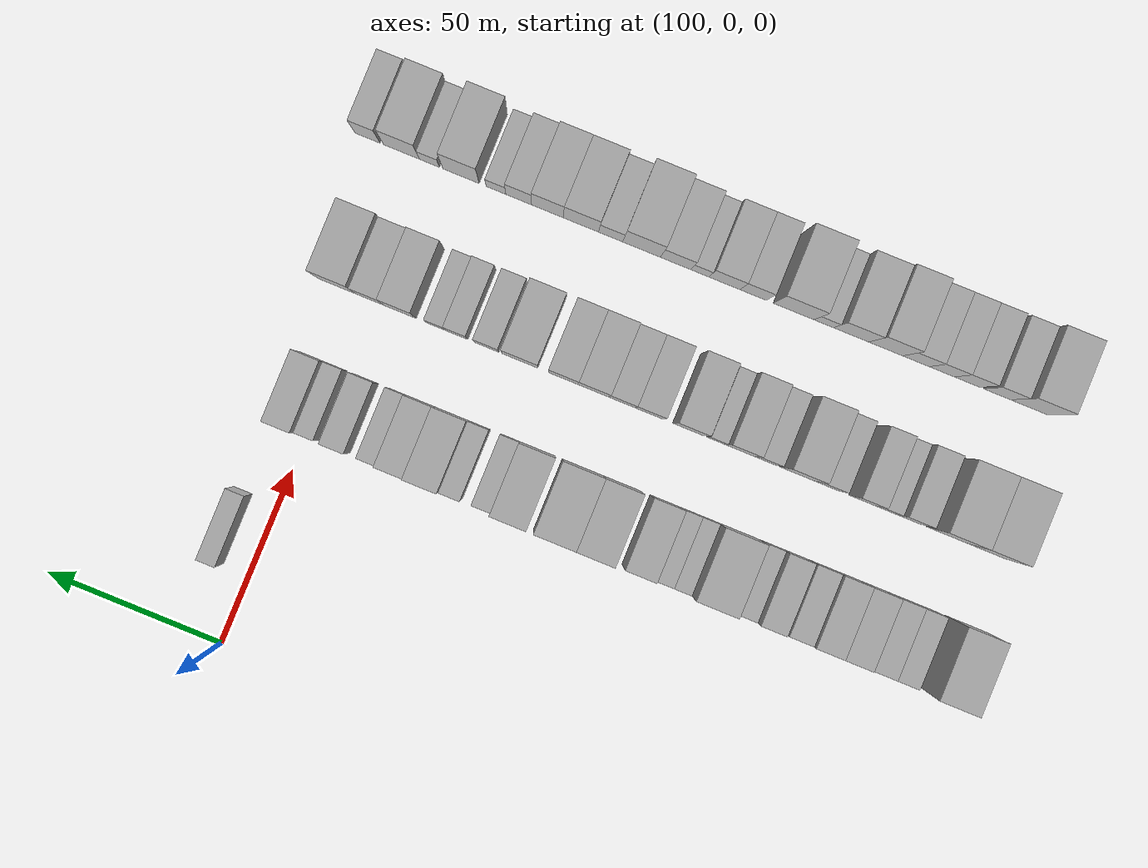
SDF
<sdf version="1.6">
 <world name="default">
  <model name="building_350">
   <static>1</static>
   <pose>130.0000 10.0593 0 0.000000 0.000000 0.000000</pose>
   <link name="link">
    <pose>0 0 6.00 0 0 0</pose>
    <collision name="collision"><geometry><box><size>20.0000 5.3705 12.0000</size></box></geometry></collision>
    <visual name="visual">
     <cast_shadows>0</cast_shadows>
     <geometry><box><size>20.0000 5.3705 12.0000</size></box></geometry>
     <material>
      <script>
       <uri>model://HANNAS_wall/materials/scripts</uri>
       <uri>model://HANNAS_wall/materials/textures</uri>
       <name>vrc/HANNAS_wall</name>
      </script>
     </material>
    </visual>
   </link>
  </model>
  <model name="building_465">
   <static>1</static>
   <pose>170.0000 -181.6694 0 0.000000 0.000000 0.000000</pose>
   <link name="link">
    <pose>0 0 12.00 0 0 0</pose>
    <collision name="collision"><geometry><box><size>20.0000 11.2381 24.0000</size></box></geometry></collision>
    <visual name="visual">
     <cast_shadows>0</cast_shadows>
     <geometry><box><size>20.0000 11.2381 24.0000</size></box></geometry>
     <material>
      <script>
       <uri>model://HANNAS_wall/materials/scripts</uri>
       <uri>model://HANNAS_wall/materials/textures</uri>
       <name>vrc/HANNAS_wall</name>
      </script>
     </material>
    </visual>
   </link>
  </model>
  <model name="building_466">
   <static>1</static>
   <pose>170.0000 -169.9853 0 0.000000 0.000000 0.000000</pose>
   <link name="link">
    <pose>0 0 7.50 0 0 0</pose>
    <collision name="collision"><geometry><box><size>20.0000 6.1302 15.0000</size></box></geometry></collision>
    <visual name="visual">
     <cast_shadows>0</cast_shadows>
     <geometry><box><size>20.0000 6.1302 15.0000</size></box></geometry>
     <material>
      <script>
       <uri>model://HANNAS_wall/materials/scripts</uri>
       <uri>model://HANNAS_wall/materials/textures</uri>
       <name>vrc/HANNAS_wall</name>
      </script>
     </material>
    </visual>
   </link>
  </model>
  <model name="building_467">
   <static>1</static>
   <pose>170.0000 -163.2960 0 0.000000 0.000000 0.000000</pose>
   <link name="link">
    <pose>0 0 7.50 0 0 0</pose>
    <collision name="collision"><geometry><box><size>20.0000 7.2484 15.0000</size></box></geometry></collision>
    <visual name="visual">
     <cast_shadows>0</cast_shadows>
     <geometry><box><size>20.0000 7.2484 15.0000</size></box></geometry>
     <material>
      <script>
       <uri>model://HANNAS_wall/materials/scripts</uri>
       <uri>model://HANNAS_wall/materials/textures</uri>
       <name>vrc/HANNAS_wall</name>
      </script>
     </material>
    </visual>
   </link>
  </model>
  <model name="building_468">
   <static>1</static>
   <pose>170.0000 -155.7333 0 0.000000 0.000000 0.000000</pose>
   <link name="link">
    <pose>0 0 9.00 0 0 0</pose>
    <collision name="collision"><geometry><box><size>20.0000 7.8770 18.0000</size></box></geometry></collision>
    <visual name="visual">
     <cast_shadows>0</cast_shadows>
     <geometry><box><size>20.0000 7.8770 18.0000</size></box></geometry>
     <material>
      <script>
       <uri>model://HANNAS_wall/materials/scripts</uri>
       <uri>model://HANNAS_wall/materials/textures</uri>
       <name>vrc/HANNAS_wall</name>
      </script>
     </material>
    </visual>
   </link>
  </model>
  <model name="building_469">
   <static>1</static>
   <pose>170.0000 -147.7872 0 0.000000 0.000000 0.000000</pose>
   <link name="link">
    <pose>0 0 9.00 0 0 0</pose>
    <collision name="collision"><geometry><box><size>20.0000 8.0150 18.0000</size></box></geometry></collision>
    <visual name="visual">
     <cast_shadows>0</cast_shadows>
     <geometry><box><size>20.0000 8.0150 18.0000</size></box></geometry>
     <material>
      <script>
       <uri>model://HANNAS_wall/materials/scripts</uri>
       <uri>model://HANNAS_wall/materials/textures</uri>
       <name>vrc/HANNAS_wall</name>
      </script>
     </material>
    </visual>
   </link>
  </model>
  <model name="building_470">
   <static>1</static>
   <pose>170.0000 -140.3285 0 0.000000 0.000000 0.000000</pose>
   <link name="link">
    <pose>0 0 7.50 0 0 0</pose>
    <collision name="collision"><geometry><box><size>20.0000 6.9024 15.0000</size></box></geometry></collision>
    <visual name="visual">
     <cast_shadows>0</cast_shadows>
     <geometry><box><size>20.0000 6.9024 15.0000</size></box></geometry>
     <material>
      <script>
       <uri>model://HANNAS_wall/materials/scripts</uri>
       <uri>model://HANNAS_wall/materials/textures</uri>
       <name>vrc/HANNAS_wall</name>
      </script>
     </material>
    </visual>
   </link>
  </model>
  <model name="building_471">
   <static>1</static>
   <pose>170.0000 -132.2051 0 0.000000 0.000000 0.000000</pose>
   <link name="link">
    <pose>0 0 9.00 0 0 0</pose>
    <collision name="collision"><geometry><box><size>20.0000 7.3445 18.0000</size></box></geometry></collision>
    <visual name="visual">
     <cast_shadows>0</cast_shadows>
     <geometry><box><size>20.0000 7.3445 18.0000</size></box></geometry>
     <material>
      <script>
       <uri>model://HANNAS_wall/materials/scripts</uri>
       <uri>model://HANNAS_wall/materials/textures</uri>
       <name>vrc/HANNAS_wall</name>
      </script>
     </material>
    </visual>
   </link>
  </model>
  <model name="building_472">
   <static>1</static>
   <pose>170.0000 -125.6757 0 0.000000 0.000000 0.000000</pose>
   <link name="link">
    <pose>0 0 6.00 0 0 0</pose>
    <collision name="collision"><geometry><box><size>20.0000 5.7143 12.0000</size></box></geometry></collision>
    <visual name="visual">
     <cast_shadows>0</cast_shadows>
     <geometry><box><size>20.0000 5.7143 12.0000</size></box></geometry>
     <material>
      <script>
       <uri>model://HANNAS_wall/materials/scripts</uri>
       <uri>model://HANNAS_wall/materials/textures</uri>
       <name>vrc/HANNAS_wall</name>
      </script>
     </material>
    </visual>
   </link>
  </model>
  <model name="building_473">
   <static>1</static>
   <pose>170.0000 -115.9577 0 0.000000 0.000000 0.000000</pose>
   <link name="link">
    <pose>0 0 12.00 0 0 0</pose>
    <collision name="collision"><geometry><box><size>20.0000 11.7216 24.0000</size></box></geometry></collision>
    <visual name="visual">
     <cast_shadows>0</cast_shadows>
     <geometry><box><size>20.0000 11.7216 24.0000</size></box></geometry>
     <material>
      <script>
       <uri>model://HANNAS_wall/materials/scripts</uri>
       <uri>model://HANNAS_wall/materials/textures</uri>
       <name>vrc/HANNAS_wall</name>
      </script>
     </material>
    </visual>
   </link>
  </model>
  <model name="building_474">
   <static>1</static>
   <pose>170.0000 -107.6489 0 0.000000 0.000000 0.000000</pose>
   <link name="link">
    <pose>0 0 6.00 0 0 0</pose>
    <collision name="collision"><geometry><box><size>20.0000 4.8961 12.0000</size></box></geometry></collision>
    <visual name="visual">
     <cast_shadows>0</cast_shadows>
     <geometry><box><size>20.0000 4.8961 12.0000</size></box></geometry>
     <material>
      <script>
       <uri>model://HANNAS_wall/materials/scripts</uri>
       <uri>model://HANNAS_wall/materials/textures</uri>
       <name>vrc/HANNAS_wall</name>
      </script>
     </material>
    </visual>
   </link>
  </model>
  <model name="building_475">
   <static>1</static>
   <pose>170.0000 -102.5561 0 0.000000 0.000000 0.000000</pose>
   <link name="link">
    <pose>0 0 6.00 0 0 0</pose>
    <collision name="collision"><geometry><box><size>20.0000 5.2893 12.0000</size></box></geometry></collision>
    <visual name="visual">
     <cast_shadows>0</cast_shadows>
     <geometry><box><size>20.0000 5.2893 12.0000</size></box></geometry>
     <material>
      <script>
       <uri>model://HANNAS_wall/materials/scripts</uri>
       <uri>model://HANNAS_wall/materials/textures</uri>
       <name>vrc/HANNAS_wall</name>
      </script>
     </material>
    </visual>
   </link>
  </model>
  <model name="building_476">
   <static>1</static>
   <pose>170.0000 -95.5056 0 0.000000 0.000000 0.000000</pose>
   <link name="link">
    <pose>0 0 9.00 0 0 0</pose>
    <collision name="collision"><geometry><box><size>20.0000 8.8117 18.0000</size></box></geometry></collision>
    <visual name="visual">
     <cast_shadows>0</cast_shadows>
     <geometry><box><size>20.0000 8.8117 18.0000</size></box></geometry>
     <material>
      <script>
       <uri>model://HANNAS_wall/materials/scripts</uri>
       <uri>model://HANNAS_wall/materials/textures</uri>
       <name>vrc/HANNAS_wall</name>
      </script>
     </material>
    </visual>
   </link>
  </model>
  <model name="building_477">
   <static>1</static>
   <pose>170.0000 -82.7929 0 0.000000 0.000000 0.000000</pose>
   <link name="link">
    <pose>0 0 12.00 0 0 0</pose>
    <collision name="collision"><geometry><box><size>20.0000 10.6139 24.0000</size></box></geometry></collision>
    <visual name="visual">
     <cast_shadows>0</cast_shadows>
     <geometry><box><size>20.0000 10.6139 24.0000</size></box></geometry>
     <material>
      <script>
       <uri>model://HANNAS_wall/materials/scripts</uri>
       <uri>model://HANNAS_wall/materials/textures</uri>
       <name>vrc/HANNAS_wall</name>
      </script>
     </material>
    </visual>
   </link>
  </model>
  <model name="building_478">
   <static>1</static>
   <pose>170.0000 -71.6167 0 0.000000 0.000000 0.000000</pose>
   <link name="link">
    <pose>0 0 12.00 0 0 0</pose>
    <collision name="collision"><geometry><box><size>20.0000 11.7384 24.0000</size></box></geometry></collision>
    <visual name="visual">
     <cast_shadows>0</cast_shadows>
     <geometry><box><size>20.0000 11.7384 24.0000</size></box></geometry>
     <material>
      <script>
       <uri>model://HANNAS_wall/materials/scripts</uri>
       <uri>model://HANNAS_wall/materials/textures</uri>
       <name>vrc/HANNAS_wall</name>
      </script>
     </material>
    </visual>
   </link>
  </model>
  <model name="building_479">
   <static>1</static>
   <pose>170.0000 -58.6818 0 0.000000 0.000000 0.000000</pose>
   <link name="link">
    <pose>0 0 12.00 0 0 0</pose>
    <collision name="collision"><geometry><box><size>20.0000 10.1314 24.0000</size></box></geometry></collision>
    <visual name="visual">
     <cast_shadows>0</cast_shadows>
     <geometry><box><size>20.0000 10.1314 24.0000</size></box></geometry>
     <material>
      <script>
       <uri>model://HANNAS_wall/materials/scripts</uri>
       <uri>model://HANNAS_wall/materials/textures</uri>
       <name>vrc/HANNAS_wall</name>
      </script>
     </material>
    </visual>
   </link>
  </model>
  <model name="building_480">
   <static>1</static>
   <pose>170.0000 -50.8608 0 0.000000 0.000000 0.000000</pose>
   <link name="link">
    <pose>0 0 6.00 0 0 0</pose>
    <collision name="collision"><geometry><box><size>20.0000 5.5106 12.0000</size></box></geometry></collision>
    <visual name="visual">
     <cast_shadows>0</cast_shadows>
     <geometry><box><size>20.0000 5.5106 12.0000</size></box></geometry>
     <material>
      <script>
       <uri>model://HANNAS_wall/materials/scripts</uri>
       <uri>model://HANNAS_wall/materials/textures</uri>
       <name>vrc/HANNAS_wall</name>
      </script>
     </material>
    </visual>
   </link>
  </model>
  <model name="building_481">
   <static>1</static>
   <pose>170.0000 -42.1025 0 0.000000 0.000000 0.000000</pose>
   <link name="link">
    <pose>0 0 7.50 0 0 0</pose>
    <collision name="collision"><geometry><box><size>20.0000 6.0059 15.0000</size></box></geometry></collision>
    <visual name="visual">
     <cast_shadows>0</cast_shadows>
     <geometry><box><size>20.0000 6.0059 15.0000</size></box></geometry>
     <material>
      <script>
       <uri>model://HANNAS_wall/materials/scripts</uri>
       <uri>model://HANNAS_wall/materials/textures</uri>
       <name>vrc/HANNAS_wall</name>
      </script>
     </material>
    </visual>
   </link>
  </model>
  <model name="building_482">
   <static>1</static>
   <pose>170.0000 -34.2829 0 0.000000 0.000000 0.000000</pose>
   <link name="link">
    <pose>0 0 10.50 0 0 0</pose>
    <collision name="collision"><geometry><box><size>20.0000 9.6333 21.0000</size></box></geometry></collision>
    <visual name="visual">
     <cast_shadows>0</cast_shadows>
     <geometry><box><size>20.0000 9.6333 21.0000</size></box></geometry>
     <material>
      <script>
       <uri>model://HANNAS_wall/materials/scripts</uri>
       <uri>model://HANNAS_wall/materials/textures</uri>
       <name>vrc/HANNAS_wall</name>
      </script>
     </material>
    </visual>
   </link>
  </model>
  <model name="building_483">
   <static>1</static>
   <pose>170.0000 -25.3923 0 0.000000 0.000000 0.000000</pose>
   <link name="link">
    <pose>0 0 9.00 0 0 0</pose>
    <collision name="collision"><geometry><box><size>20.0000 8.1480 18.0000</size></box></geometry></collision>
    <visual name="visual">
     <cast_shadows>0</cast_shadows>
     <geometry><box><size>20.0000 8.1480 18.0000</size></box></geometry>
     <material>
      <script>
       <uri>model://HANNAS_wall/materials/scripts</uri>
       <uri>model://HANNAS_wall/materials/textures</uri>
       <name>vrc/HANNAS_wall</name>
      </script>
     </material>
    </visual>
   </link>
  </model>
  <model name="building_484">
   <static>1</static>
   <pose>170.0000 -18.4971 0 0.000000 0.000000 0.000000</pose>
   <link name="link">
    <pose>0 0 6.00 0 0 0</pose>
    <collision name="collision"><geometry><box><size>20.0000 5.6424 12.0000</size></box></geometry></collision>
    <visual name="visual">
     <cast_shadows>0</cast_shadows>
     <geometry><box><size>20.0000 5.6424 12.0000</size></box></geometry>
     <material>
      <script>
       <uri>model://HANNAS_wall/materials/scripts</uri>
       <uri>model://HANNAS_wall/materials/textures</uri>
       <name>vrc/HANNAS_wall</name>
      </script>
     </material>
    </visual>
   </link>
  </model>
  <model name="building_485">
   <static>1</static>
   <pose>170.0000 -9.1692 0 0.000000 0.000000 0.000000</pose>
   <link name="link">
    <pose>0 0 7.50 0 0 0</pose>
    <collision name="collision"><geometry><box><size>20.0000 7.0135 15.0000</size></box></geometry></collision>
    <visual name="visual">
     <cast_shadows>0</cast_shadows>
     <geometry><box><size>20.0000 7.0135 15.0000</size></box></geometry>
     <material>
      <script>
       <uri>model://HANNAS_wall/materials/scripts</uri>
       <uri>model://HANNAS_wall/materials/textures</uri>
       <name>vrc/HANNAS_wall</name>
      </script>
     </material>
    </visual>
   </link>
  </model>
  <model name="building_486">
   <static>1</static>
   <pose>170.0000 -0.9115 0 0.000000 0.000000 0.000000</pose>
   <link name="link">
    <pose>0 0 6.00 0 0 0</pose>
    <collision name="collision"><geometry><box><size>20.0000 5.5019 12.0000</size></box></geometry></collision>
    <visual name="visual">
     <cast_shadows>0</cast_shadows>
     <geometry><box><size>20.0000 5.5019 12.0000</size></box></geometry>
     <material>
      <script>
       <uri>model://HANNAS_wall/materials/scripts</uri>
       <uri>model://HANNAS_wall/materials/textures</uri>
       <name>vrc/HANNAS_wall</name>
      </script>
     </material>
    </visual>
   </link>
  </model>
  <model name="building_487">
   <static>1</static>
   <pose>170.0000 5.8274 0 0.000000 0.000000 0.000000</pose>
   <link name="link">
    <pose>0 0 9.00 0 0 0</pose>
    <collision name="collision"><geometry><box><size>20.0000 7.9759 18.0000</size></box></geometry></collision>
    <visual name="visual">
     <cast_shadows>0</cast_shadows>
     <geometry><box><size>20.0000 7.9759 18.0000</size></box></geometry>
     <material>
      <script>
       <uri>model://HANNAS_wall/materials/scripts</uri>
       <uri>model://HANNAS_wall/materials/textures</uri>
       <name>vrc/HANNAS_wall</name>
      </script>
     </material>
    </visual>
   </link>
  </model>
  <model name="building_603">
   <static>1</static>
   <pose>210.0000 -179.7787 0 0.000000 0.000000 0.000000</pose>
   <link name="link">
    <pose>0 0 12.00 0 0 0</pose>
    <collision name="collision"><geometry><box><size>20.0000 11.0866 24.0000</size></box></geometry></collision>
    <visual name="visual">
     <cast_shadows>0</cast_shadows>
     <geometry><box><size>20.0000 11.0866 24.0000</size></box></geometry>
     <material>
      <script>
       <uri>model://HANNAS_wall/materials/scripts</uri>
       <uri>model://HANNAS_wall/materials/textures</uri>
       <name>vrc/HANNAS_wall</name>
      </script>
     </material>
    </visual>
   </link>
  </model>
  <model name="building_604">
   <static>1</static>
   <pose>210.0000 -168.4870 0 0.000000 0.000000 0.000000</pose>
   <link name="link">
    <pose>0 0 12.00 0 0 0</pose>
    <collision name="collision"><geometry><box><size>20.0000 11.4967 24.0000</size></box></geometry></collision>
    <visual name="visual">
     <cast_shadows>0</cast_shadows>
     <geometry><box><size>20.0000 11.4967 24.0000</size></box></geometry>
     <material>
      <script>
       <uri>model://HANNAS_wall/materials/scripts</uri>
       <uri>model://HANNAS_wall/materials/textures</uri>
       <name>vrc/HANNAS_wall</name>
      </script>
     </material>
    </visual>
   </link>
  </model>
  <model name="building_605">
   <static>1</static>
   <pose>210.0000 -157.0192 0 0.000000 0.000000 0.000000</pose>
   <link name="link">
    <pose>0 0 9.00 0 0 0</pose>
    <collision name="collision"><geometry><box><size>20.0000 7.4388 18.0000</size></box></geometry></collision>
    <visual name="visual">
     <cast_shadows>0</cast_shadows>
     <geometry><box><size>20.0000 7.4388 18.0000</size></box></geometry>
     <material>
      <script>
       <uri>model://HANNAS_wall/materials/scripts</uri>
       <uri>model://HANNAS_wall/materials/textures</uri>
       <name>vrc/HANNAS_wall</name>
      </script>
     </material>
    </visual>
   </link>
  </model>
  <model name="building_606">
   <static>1</static>
   <pose>210.0000 -150.4429 0 0.000000 0.000000 0.000000</pose>
   <link name="link">
    <pose>0 0 6.00 0 0 0</pose>
    <collision name="collision"><geometry><box><size>20.0000 5.7138 12.0000</size></box></geometry></collision>
    <visual name="visual">
     <cast_shadows>0</cast_shadows>
     <geometry><box><size>20.0000 5.7138 12.0000</size></box></geometry>
     <material>
      <script>
       <uri>model://HANNAS_wall/materials/scripts</uri>
       <uri>model://HANNAS_wall/materials/textures</uri>
       <name>vrc/HANNAS_wall</name>
      </script>
     </material>
    </visual>
   </link>
  </model>
  <model name="building_607">
   <static>1</static>
   <pose>210.0000 -143.9766 0 0.000000 0.000000 0.000000</pose>
   <link name="link">
    <pose>0 0 9.00 0 0 0</pose>
    <collision name="collision"><geometry><box><size>20.0000 7.2189 18.0000</size></box></geometry></collision>
    <visual name="visual">
     <cast_shadows>0</cast_shadows>
     <geometry><box><size>20.0000 7.2189 18.0000</size></box></geometry>
     <material>
      <script>
       <uri>model://HANNAS_wall/materials/scripts</uri>
       <uri>model://HANNAS_wall/materials/textures</uri>
       <name>vrc/HANNAS_wall</name>
      </script>
     </material>
    </visual>
   </link>
  </model>
  <model name="building_608">
   <static>1</static>
   <pose>210.0000 -133.7307 0 0.000000 0.000000 0.000000</pose>
   <link name="link">
    <pose>0 0 7.50 0 0 0</pose>
    <collision name="collision"><geometry><box><size>20.0000 7.2730 15.0000</size></box></geometry></collision>
    <visual name="visual">
     <cast_shadows>0</cast_shadows>
     <geometry><box><size>20.0000 7.2730 15.0000</size></box></geometry>
     <material>
      <script>
       <uri>model://HANNAS_wall/materials/scripts</uri>
       <uri>model://HANNAS_wall/materials/textures</uri>
       <name>vrc/HANNAS_wall</name>
      </script>
     </material>
    </visual>
   </link>
  </model>
  <model name="building_609">
   <static>1</static>
   <pose>210.0000 -125.1802 0 0.000000 0.000000 0.000000</pose>
   <link name="link">
    <pose>0 0 12.00 0 0 0</pose>
    <collision name="collision"><geometry><box><size>20.0000 9.8280 24.0000</size></box></geometry></collision>
    <visual name="visual">
     <cast_shadows>0</cast_shadows>
     <geometry><box><size>20.0000 9.8280 24.0000</size></box></geometry>
     <material>
      <script>
       <uri>model://HANNAS_wall/materials/scripts</uri>
       <uri>model://HANNAS_wall/materials/textures</uri>
       <name>vrc/HANNAS_wall</name>
      </script>
     </material>
    </visual>
   </link>
  </model>
  <model name="building_610">
   <static>1</static>
   <pose>210.0000 -115.9820 0 0.000000 0.000000 0.000000</pose>
   <link name="link">
    <pose>0 0 7.50 0 0 0</pose>
    <collision name="collision"><geometry><box><size>20.0000 6.5684 15.0000</size></box></geometry></collision>
    <visual name="visual">
     <cast_shadows>0</cast_shadows>
     <geometry><box><size>20.0000 6.5684 15.0000</size></box></geometry>
     <material>
      <script>
       <uri>model://HANNAS_wall/materials/scripts</uri>
       <uri>model://HANNAS_wall/materials/textures</uri>
       <name>vrc/HANNAS_wall</name>
      </script>
     </material>
    </visual>
   </link>
  </model>
  <model name="building_611">
   <static>1</static>
   <pose>210.0000 -108.4484 0 0.000000 0.000000 0.000000</pose>
   <link name="link">
    <pose>0 0 10.50 0 0 0</pose>
    <collision name="collision"><geometry><box><size>20.0000 8.4989 21.0000</size></box></geometry></collision>
    <visual name="visual">
     <cast_shadows>0</cast_shadows>
     <geometry><box><size>20.0000 8.4989 21.0000</size></box></geometry>
     <material>
      <script>
       <uri>model://HANNAS_wall/materials/scripts</uri>
       <uri>model://HANNAS_wall/materials/textures</uri>
       <name>vrc/HANNAS_wall</name>
      </script>
     </material>
    </visual>
   </link>
  </model>
  <model name="building_612">
   <static>1</static>
   <pose>210.0000 -101.7890 0 0.000000 0.000000 0.000000</pose>
   <link name="link">
    <pose>0 0 6.00 0 0 0</pose>
    <collision name="collision"><geometry><box><size>20.0000 4.8198 12.0000</size></box></geometry></collision>
    <visual name="visual">
     <cast_shadows>0</cast_shadows>
     <geometry><box><size>20.0000 4.8198 12.0000</size></box></geometry>
     <material>
      <script>
       <uri>model://HANNAS_wall/materials/scripts</uri>
       <uri>model://HANNAS_wall/materials/textures</uri>
       <name>vrc/HANNAS_wall</name>
      </script>
     </material>
    </visual>
   </link>
  </model>
  <model name="building_613">
   <static>1</static>
   <pose>210.0000 -93.9349 0 0.000000 0.000000 0.000000</pose>
   <link name="link">
    <pose>0 0 10.50 0 0 0</pose>
    <collision name="collision"><geometry><box><size>20.0000 8.8883 21.0000</size></box></geometry></collision>
    <visual name="visual">
     <cast_shadows>0</cast_shadows>
     <geometry><box><size>20.0000 8.8883 21.0000</size></box></geometry>
     <material>
      <script>
       <uri>model://HANNAS_wall/materials/scripts</uri>
       <uri>model://HANNAS_wall/materials/textures</uri>
       <name>vrc/HANNAS_wall</name>
      </script>
     </material>
    </visual>
   </link>
  </model>
  <model name="building_614">
   <static>1</static>
   <pose>210.0000 -82.4292 0 0.000000 0.000000 0.000000</pose>
   <link name="link">
    <pose>0 0 9.00 0 0 0</pose>
    <collision name="collision"><geometry><box><size>20.0000 8.1232 18.0000</size></box></geometry></collision>
    <visual name="visual">
     <cast_shadows>0</cast_shadows>
     <geometry><box><size>20.0000 8.1232 18.0000</size></box></geometry>
     <material>
      <script>
       <uri>model://HANNAS_wall/materials/scripts</uri>
       <uri>model://HANNAS_wall/materials/textures</uri>
       <name>vrc/HANNAS_wall</name>
      </script>
     </material>
    </visual>
   </link>
  </model>
  <model name="building_615">
   <static>1</static>
   <pose>210.0000 -74.6309 0 0.000000 0.000000 0.000000</pose>
   <link name="link">
    <pose>0 0 9.00 0 0 0</pose>
    <collision name="collision"><geometry><box><size>20.0000 7.4734 18.0000</size></box></geometry></collision>
    <visual name="visual">
     <cast_shadows>0</cast_shadows>
     <geometry><box><size>20.0000 7.4734 18.0000</size></box></geometry>
     <material>
      <script>
       <uri>model://HANNAS_wall/materials/scripts</uri>
       <uri>model://HANNAS_wall/materials/textures</uri>
       <name>vrc/HANNAS_wall</name>
      </script>
     </material>
    </visual>
   </link>
  </model>
  <model name="building_616">
   <static>1</static>
   <pose>210.0000 -66.4428 0 0.000000 0.000000 0.000000</pose>
   <link name="link">
    <pose>0 0 10.50 0 0 0</pose>
    <collision name="collision"><geometry><box><size>20.0000 8.9028 21.0000</size></box></geometry></collision>
    <visual name="visual">
     <cast_shadows>0</cast_shadows>
     <geometry><box><size>20.0000 8.9028 21.0000</size></box></geometry>
     <material>
      <script>
       <uri>model://HANNAS_wall/materials/scripts</uri>
       <uri>model://HANNAS_wall/materials/textures</uri>
       <name>vrc/HANNAS_wall</name>
      </script>
     </material>
    </visual>
   </link>
  </model>
  <model name="building_617">
   <static>1</static>
   <pose>210.0000 -57.7674 0 0.000000 0.000000 0.000000</pose>
   <link name="link">
    <pose>0 0 10.50 0 0 0</pose>
    <collision name="collision"><geometry><box><size>20.0000 8.4480 21.0000</size></box></geometry></collision>
    <visual name="visual">
     <cast_shadows>0</cast_shadows>
     <geometry><box><size>20.0000 8.4480 21.0000</size></box></geometry>
     <material>
      <script>
       <uri>model://HANNAS_wall/materials/scripts</uri>
       <uri>model://HANNAS_wall/materials/textures</uri>
       <name>vrc/HANNAS_wall</name>
      </script>
     </material>
    </visual>
   </link>
  </model>
  <model name="building_618">
   <static>1</static>
   <pose>210.0000 -45.4140 0 0.000000 0.000000 0.000000</pose>
   <link name="link">
    <pose>0 0 10.50 0 0 0</pose>
    <collision name="collision"><geometry><box><size>20.0000 10.2586 21.0000</size></box></geometry></collision>
    <visual name="visual">
     <cast_shadows>0</cast_shadows>
     <geometry><box><size>20.0000 10.2586 21.0000</size></box></geometry>
     <material>
      <script>
       <uri>model://HANNAS_wall/materials/scripts</uri>
       <uri>model://HANNAS_wall/materials/textures</uri>
       <name>vrc/HANNAS_wall</name>
      </script>
     </material>
    </visual>
   </link>
  </model>
  <model name="building_619">
   <static>1</static>
   <pose>210.0000 -35.7918 0 0.000000 0.000000 0.000000</pose>
   <link name="link">
    <pose>0 0 7.50 0 0 0</pose>
    <collision name="collision"><geometry><box><size>20.0000 6.9859 15.0000</size></box></geometry></collision>
    <visual name="visual">
     <cast_shadows>0</cast_shadows>
     <geometry><box><size>20.0000 6.9859 15.0000</size></box></geometry>
     <material>
      <script>
       <uri>model://HANNAS_wall/materials/scripts</uri>
       <uri>model://HANNAS_wall/materials/textures</uri>
       <name>vrc/HANNAS_wall</name>
      </script>
     </material>
    </visual>
   </link>
  </model>
  <model name="building_620">
   <static>1</static>
   <pose>210.0000 -27.0993 0 0.000000 0.000000 0.000000</pose>
   <link name="link">
    <pose>0 0 7.50 0 0 0</pose>
    <collision name="collision"><geometry><box><size>20.0000 6.3991 15.0000</size></box></geometry></collision>
    <visual name="visual">
     <cast_shadows>0</cast_shadows>
     <geometry><box><size>20.0000 6.3991 15.0000</size></box></geometry>
     <material>
      <script>
       <uri>model://HANNAS_wall/materials/scripts</uri>
       <uri>model://HANNAS_wall/materials/textures</uri>
       <name>vrc/HANNAS_wall</name>
      </script>
     </material>
    </visual>
   </link>
  </model>
  <model name="building_621">
   <static>1</static>
   <pose>210.0000 -21.1262 0 0.000000 0.000000 0.000000</pose>
   <link name="link">
    <pose>0 0 6.00 0 0 0</pose>
    <collision name="collision"><geometry><box><size>20.0000 5.5471 12.0000</size></box></geometry></collision>
    <visual name="visual">
     <cast_shadows>0</cast_shadows>
     <geometry><box><size>20.0000 5.5471 12.0000</size></box></geometry>
     <material>
      <script>
       <uri>model://HANNAS_wall/materials/scripts</uri>
       <uri>model://HANNAS_wall/materials/textures</uri>
       <name>vrc/HANNAS_wall</name>
      </script>
     </material>
    </visual>
   </link>
  </model>
  <model name="building_622">
   <static>1</static>
   <pose>210.0000 -10.7314 0 0.000000 0.000000 0.000000</pose>
   <link name="link">
    <pose>0 0 10.50 0 0 0</pose>
    <collision name="collision"><geometry><box><size>20.0000 9.2426 21.0000</size></box></geometry></collision>
    <visual name="visual">
     <cast_shadows>0</cast_shadows>
     <geometry><box><size>20.0000 9.2426 21.0000</size></box></geometry>
     <material>
      <script>
       <uri>model://HANNAS_wall/materials/scripts</uri>
       <uri>model://HANNAS_wall/materials/textures</uri>
       <name>vrc/HANNAS_wall</name>
      </script>
     </material>
    </visual>
   </link>
  </model>
  <model name="building_623">
   <static>1</static>
   <pose>210.0000 -2.0652 0 0.000000 0.000000 0.000000</pose>
   <link name="link">
    <pose>0 0 9.00 0 0 0</pose>
    <collision name="collision"><geometry><box><size>20.0000 8.0897 18.0000</size></box></geometry></collision>
    <visual name="visual">
     <cast_shadows>0</cast_shadows>
     <geometry><box><size>20.0000 8.0897 18.0000</size></box></geometry>
     <material>
      <script>
       <uri>model://HANNAS_wall/materials/scripts</uri>
       <uri>model://HANNAS_wall/materials/textures</uri>
       <name>vrc/HANNAS_wall</name>
      </script>
     </material>
    </visual>
   </link>
  </model>
  <model name="building_624">
   <static>1</static>
   <pose>210.0000 7.4010 0 0.000000 0.000000 0.000000</pose>
   <link name="link">
    <pose>0 0 12.00 0 0 0</pose>
    <collision name="collision"><geometry><box><size>20.0000 10.8426 24.0000</size></box></geometry></collision>
    <visual name="visual">
     <cast_shadows>0</cast_shadows>
     <geometry><box><size>20.0000 10.8426 24.0000</size></box></geometry>
     <material>
      <script>
       <uri>model://HANNAS_wall/materials/scripts</uri>
       <uri>model://HANNAS_wall/materials/textures</uri>
       <name>vrc/HANNAS_wall</name>
      </script>
     </material>
    </visual>
   </link>
  </model>
  <model name="building_738">
   <static>1</static>
   <pose>250.0000 -176.2101 0 0.000000 0.000000 0.000000</pose>
   <link name="link">
    <pose>0 0 12.00 0 0 0</pose>
    <collision name="collision"><geometry><box><size>20.0000 10.6359 24.0000</size></box></geometry></collision>
    <visual name="visual">
     <cast_shadows>0</cast_shadows>
     <geometry><box><size>20.0000 10.6359 24.0000</size></box></geometry>
     <material>
      <script>
       <uri>model://HANNAS_wall/materials/scripts</uri>
       <uri>model://HANNAS_wall/materials/textures</uri>
       <name>vrc/HANNAS_wall</name>
      </script>
     </material>
    </visual>
   </link>
  </model>
  <model name="building_739">
   <static>1</static>
   <pose>250.0000 -167.0385 0 0.000000 0.000000 0.000000</pose>
   <link name="link">
    <pose>0 0 9.00 0 0 0</pose>
    <collision name="collision"><geometry><box><size>20.0000 7.7074 18.0000</size></box></geometry></collision>
    <visual name="visual">
     <cast_shadows>0</cast_shadows>
     <geometry><box><size>20.0000 7.7074 18.0000</size></box></geometry>
     <material>
      <script>
       <uri>model://HANNAS_wall/materials/scripts</uri>
       <uri>model://HANNAS_wall/materials/textures</uri>
       <name>vrc/HANNAS_wall</name>
      </script>
     </material>
    </visual>
   </link>
  </model>
  <model name="building_740">
   <static>1</static>
   <pose>250.0000 -158.4675 0 0.000000 0.000000 0.000000</pose>
   <link name="link">
    <pose>0 0 9.00 0 0 0</pose>
    <collision name="collision"><geometry><box><size>20.0000 7.4347 18.0000</size></box></geometry></collision>
    <visual name="visual">
     <cast_shadows>0</cast_shadows>
     <geometry><box><size>20.0000 7.4347 18.0000</size></box></geometry>
     <material>
      <script>
       <uri>model://HANNAS_wall/materials/scripts</uri>
       <uri>model://HANNAS_wall/materials/textures</uri>
       <name>vrc/HANNAS_wall</name>
      </script>
     </material>
    </visual>
   </link>
  </model>
  <model name="building_741">
   <static>1</static>
   <pose>250.0000 -151.1089 0 0.000000 0.000000 0.000000</pose>
   <link name="link">
    <pose>0 0 9.00 0 0 0</pose>
    <collision name="collision"><geometry><box><size>20.0000 7.2824 18.0000</size></box></geometry></collision>
    <visual name="visual">
     <cast_shadows>0</cast_shadows>
     <geometry><box><size>20.0000 7.2824 18.0000</size></box></geometry>
     <material>
      <script>
       <uri>model://HANNAS_wall/materials/scripts</uri>
       <uri>model://HANNAS_wall/materials/textures</uri>
       <name>vrc/HANNAS_wall</name>
      </script>
     </material>
    </visual>
   </link>
  </model>
  <model name="building_742">
   <static>1</static>
   <pose>250.0000 -143.6318 0 0.000000 0.000000 0.000000</pose>
   <link name="link">
    <pose>0 0 9.00 0 0 0</pose>
    <collision name="collision"><geometry><box><size>20.0000 7.6718 18.0000</size></box></geometry></collision>
    <visual name="visual">
     <cast_shadows>0</cast_shadows>
     <geometry><box><size>20.0000 7.6718 18.0000</size></box></geometry>
     <material>
      <script>
       <uri>model://HANNAS_wall/materials/scripts</uri>
       <uri>model://HANNAS_wall/materials/textures</uri>
       <name>vrc/HANNAS_wall</name>
      </script>
     </material>
    </visual>
   </link>
  </model>
  <model name="building_743">
   <static>1</static>
   <pose>250.0000 -134.8790 0 0.000000 0.000000 0.000000</pose>
   <link name="link">
    <pose>0 0 12.00 0 0 0</pose>
    <collision name="collision"><geometry><box><size>20.0000 9.8337 24.0000</size></box></geometry></collision>
    <visual name="visual">
     <cast_shadows>0</cast_shadows>
     <geometry><box><size>20.0000 9.8337 24.0000</size></box></geometry>
     <material>
      <script>
       <uri>model://HANNAS_wall/materials/scripts</uri>
       <uri>model://HANNAS_wall/materials/textures</uri>
       <name>vrc/HANNAS_wall</name>
      </script>
     </material>
    </visual>
   </link>
  </model>
  <model name="building_744">
   <static>1</static>
   <pose>250.0000 -124.8759 0 0.000000 0.000000 0.000000</pose>
   <link name="link">
    <pose>0 0 10.50 0 0 0</pose>
    <collision name="collision"><geometry><box><size>20.0000 10.1726 21.0000</size></box></geometry></collision>
    <visual name="visual">
     <cast_shadows>0</cast_shadows>
     <geometry><box><size>20.0000 10.1726 21.0000</size></box></geometry>
     <material>
      <script>
       <uri>model://HANNAS_wall/materials/scripts</uri>
       <uri>model://HANNAS_wall/materials/textures</uri>
       <name>vrc/HANNAS_wall</name>
      </script>
     </material>
    </visual>
   </link>
  </model>
  <model name="building_745">
   <static>1</static>
   <pose>250.0000 -116.9622 0 0.000000 0.000000 0.000000</pose>
   <link name="link">
    <pose>0 0 6.00 0 0 0</pose>
    <collision name="collision"><geometry><box><size>20.0000 5.6547 12.0000</size></box></geometry></collision>
    <visual name="visual">
     <cast_shadows>0</cast_shadows>
     <geometry><box><size>20.0000 5.6547 12.0000</size></box></geometry>
     <material>
      <script>
       <uri>model://HANNAS_wall/materials/scripts</uri>
       <uri>model://HANNAS_wall/materials/textures</uri>
       <name>vrc/HANNAS_wall</name>
      </script>
     </material>
    </visual>
   </link>
  </model>
  <model name="building_746">
   <static>1</static>
   <pose>250.0000 -108.2751 0 0.000000 0.000000 0.000000</pose>
   <link name="link">
    <pose>0 0 12.00 0 0 0</pose>
    <collision name="collision"><geometry><box><size>20.0000 11.7196 24.0000</size></box></geometry></collision>
    <visual name="visual">
     <cast_shadows>0</cast_shadows>
     <geometry><box><size>20.0000 11.7196 24.0000</size></box></geometry>
     <material>
      <script>
       <uri>model://HANNAS_wall/materials/scripts</uri>
       <uri>model://HANNAS_wall/materials/textures</uri>
       <name>vrc/HANNAS_wall</name>
      </script>
     </material>
    </visual>
   </link>
  </model>
  <model name="building_747">
   <static>1</static>
   <pose>250.0000 -96.5942 0 0.000000 0.000000 0.000000</pose>
   <link name="link">
    <pose>0 0 9.00 0 0 0</pose>
    <collision name="collision"><geometry><box><size>20.0000 7.6421 18.0000</size></box></geometry></collision>
    <visual name="visual">
     <cast_shadows>0</cast_shadows>
     <geometry><box><size>20.0000 7.6421 18.0000</size></box></geometry>
     <material>
      <script>
       <uri>model://HANNAS_wall/materials/scripts</uri>
       <uri>model://HANNAS_wall/materials/textures</uri>
       <name>vrc/HANNAS_wall</name>
      </script>
     </material>
    </visual>
   </link>
  </model>
  <model name="building_748">
   <static>1</static>
   <pose>250.0000 -88.2963 0 0.000000 0.000000 0.000000</pose>
   <link name="link">
    <pose>0 0 9.00 0 0 0</pose>
    <collision name="collision"><geometry><box><size>20.0000 8.9537 18.0000</size></box></geometry></collision>
    <visual name="visual">
     <cast_shadows>0</cast_shadows>
     <geometry><box><size>20.0000 8.9537 18.0000</size></box></geometry>
     <material>
      <script>
       <uri>model://HANNAS_wall/materials/scripts</uri>
       <uri>model://HANNAS_wall/materials/textures</uri>
       <name>vrc/HANNAS_wall</name>
      </script>
     </material>
    </visual>
   </link>
  </model>
  <model name="building_749">
   <static>1</static>
   <pose>250.0000 -81.2121 0 0.000000 0.000000 0.000000</pose>
   <link name="link">
    <pose>0 0 6.00 0 0 0</pose>
    <collision name="collision"><geometry><box><size>20.0000 5.2146 12.0000</size></box></geometry></collision>
    <visual name="visual">
     <cast_shadows>0</cast_shadows>
     <geometry><box><size>20.0000 5.2146 12.0000</size></box></geometry>
     <material>
      <script>
       <uri>model://HANNAS_wall/materials/scripts</uri>
       <uri>model://HANNAS_wall/materials/textures</uri>
       <name>vrc/HANNAS_wall</name>
      </script>
     </material>
    </visual>
   </link>
  </model>
  <model name="building_750">
   <static>1</static>
   <pose>250.0000 -74.1714 0 0.000000 0.000000 0.000000</pose>
   <link name="link">
    <pose>0 0 9.00 0 0 0</pose>
    <collision name="collision"><geometry><box><size>20.0000 8.8668 18.0000</size></box></geometry></collision>
    <visual name="visual">
     <cast_shadows>0</cast_shadows>
     <geometry><box><size>20.0000 8.8668 18.0000</size></box></geometry>
     <material>
      <script>
       <uri>model://HANNAS_wall/materials/scripts</uri>
       <uri>model://HANNAS_wall/materials/textures</uri>
       <name>vrc/HANNAS_wall</name>
      </script>
     </material>
    </visual>
   </link>
  </model>
  <model name="building_751">
   <static>1</static>
   <pose>250.0000 -64.2683 0 0.000000 0.000000 0.000000</pose>
   <link name="link">
    <pose>0 0 12.00 0 0 0</pose>
    <collision name="collision"><geometry><box><size>20.0000 10.9393 24.0000</size></box></geometry></collision>
    <visual name="visual">
     <cast_shadows>0</cast_shadows>
     <geometry><box><size>20.0000 10.9393 24.0000</size></box></geometry>
     <material>
      <script>
       <uri>model://HANNAS_wall/materials/scripts</uri>
       <uri>model://HANNAS_wall/materials/textures</uri>
       <name>vrc/HANNAS_wall</name>
      </script>
     </material>
    </visual>
   </link>
  </model>
  <model name="building_752">
   <static>1</static>
   <pose>250.0000 -55.2936 0 0.000000 0.000000 0.000000</pose>
   <link name="link">
    <pose>0 0 7.50 0 0 0</pose>
    <collision name="collision"><geometry><box><size>20.0000 7.0100 15.0000</size></box></geometry></collision>
    <visual name="visual">
     <cast_shadows>0</cast_shadows>
     <geometry><box><size>20.0000 7.0100 15.0000</size></box></geometry>
     <material>
      <script>
       <uri>model://HANNAS_wall/materials/scripts</uri>
       <uri>model://HANNAS_wall/materials/textures</uri>
       <name>vrc/HANNAS_wall</name>
      </script>
     </material>
    </visual>
   </link>
  </model>
  <model name="building_753">
   <static>1</static>
   <pose>250.0000 -46.6843 0 0.000000 0.000000 0.000000</pose>
   <link name="link">
    <pose>0 0 10.50 0 0 0</pose>
    <collision name="collision"><geometry><box><size>20.0000 10.2088 21.0000</size></box></geometry></collision>
    <visual name="visual">
     <cast_shadows>0</cast_shadows>
     <geometry><box><size>20.0000 10.2088 21.0000</size></box></geometry>
     <material>
      <script>
       <uri>model://HANNAS_wall/materials/scripts</uri>
       <uri>model://HANNAS_wall/materials/textures</uri>
       <name>vrc/HANNAS_wall</name>
      </script>
     </material>
    </visual>
   </link>
  </model>
  <model name="building_754">
   <static>1</static>
   <pose>250.0000 -36.9735 0 0.000000 0.000000 0.000000</pose>
   <link name="link">
    <pose>0 0 10.50 0 0 0</pose>
    <collision name="collision"><geometry><box><size>20.0000 9.2128 21.0000</size></box></geometry></collision>
    <visual name="visual">
     <cast_shadows>0</cast_shadows>
     <geometry><box><size>20.0000 9.2128 21.0000</size></box></geometry>
     <material>
      <script>
       <uri>model://HANNAS_wall/materials/scripts</uri>
       <uri>model://HANNAS_wall/materials/textures</uri>
       <name>vrc/HANNAS_wall</name>
      </script>
     </material>
    </visual>
   </link>
  </model>
  <model name="building_755">
   <static>1</static>
   <pose>250.0000 -28.6544 0 0.000000 0.000000 0.000000</pose>
   <link name="link">
    <pose>0 0 9.00 0 0 0</pose>
    <collision name="collision"><geometry><box><size>20.0000 7.4253 18.0000</size></box></geometry></collision>
    <visual name="visual">
     <cast_shadows>0</cast_shadows>
     <geometry><box><size>20.0000 7.4253 18.0000</size></box></geometry>
     <material>
      <script>
       <uri>model://HANNAS_wall/materials/scripts</uri>
       <uri>model://HANNAS_wall/materials/textures</uri>
       <name>vrc/HANNAS_wall</name>
      </script>
     </material>
    </visual>
   </link>
  </model>
  <model name="building_756">
   <static>1</static>
   <pose>250.0000 -22.0743 0 0.000000 0.000000 0.000000</pose>
   <link name="link">
    <pose>0 0 6.00 0 0 0</pose>
    <collision name="collision"><geometry><box><size>20.0000 5.7350 12.0000</size></box></geometry></collision>
    <visual name="visual">
     <cast_shadows>0</cast_shadows>
     <geometry><box><size>20.0000 5.7350 12.0000</size></box></geometry>
     <material>
      <script>
       <uri>model://HANNAS_wall/materials/scripts</uri>
       <uri>model://HANNAS_wall/materials/textures</uri>
       <name>vrc/HANNAS_wall</name>
      </script>
     </material>
    </visual>
   </link>
  </model>
  <model name="building_757">
   <static>1</static>
   <pose>250.0000 -11.9406 0 0.000000 0.000000 0.000000</pose>
   <link name="link">
    <pose>0 0 12.00 0 0 0</pose>
    <collision name="collision"><geometry><box><size>20.0000 10.5324 24.0000</size></box></geometry></collision>
    <visual name="visual">
     <cast_shadows>0</cast_shadows>
     <geometry><box><size>20.0000 10.5324 24.0000</size></box></geometry>
     <material>
      <script>
       <uri>model://HANNAS_wall/materials/scripts</uri>
       <uri>model://HANNAS_wall/materials/textures</uri>
       <name>vrc/HANNAS_wall</name>
      </script>
     </material>
    </visual>
   </link>
  </model>
  <model name="building_758">
   <static>1</static>
   <pose>250.0000 -2.7612 0 0.000000 0.000000 0.000000</pose>
   <link name="link">
    <pose>0 0 6.00 0 0 0</pose>
    <collision name="collision"><geometry><box><size>20.0000 5.8263 12.0000</size></box></geometry></collision>
    <visual name="visual">
     <cast_shadows>0</cast_shadows>
     <geometry><box><size>20.0000 5.8263 12.0000</size></box></geometry>
     <material>
      <script>
       <uri>model://HANNAS_wall/materials/scripts</uri>
       <uri>model://HANNAS_wall/materials/textures</uri>
       <name>vrc/HANNAS_wall</name>
      </script>
     </material>
    </visual>
   </link>
  </model>
  <model name="building_759">
   <static>1</static>
   <pose>250.0000 5.3673 0 0.000000 0.000000 0.000000</pose>
   <link name="link">
    <pose>0 0 10.50 0 0 0</pose>
    <collision name="collision"><geometry><box><size>20.0000 10.4307 21.0000</size></box></geometry></collision>
    <visual name="visual">
     <cast_shadows>0</cast_shadows>
     <geometry><box><size>20.0000 10.4307 21.0000</size></box></geometry>
     <material>
      <script>
       <uri>model://HANNAS_wall/materials/scripts</uri>
       <uri>model://HANNAS_wall/materials/textures</uri>
       <name>vrc/HANNAS_wall</name>
      </script>
     </material>
    </visual>
   </link>
  </model>
  <model name="building_760">
   <static>1</static>
   <pose>250.0000 15.2040 0 0.000000 0.000000 0.000000</pose>
   <link name="link">
    <pose>0 0 9.00 0 0 0</pose>
    <collision name="collision"><geometry><box><size>20.0000 7.2426 18.0000</size></box></geometry></collision>
    <visual name="visual">
     <cast_shadows>0</cast_shadows>
     <geometry><box><size>20.0000 7.2426 18.0000</size></box></geometry>
     <material>
      <script>
       <uri>model://HANNAS_wall/materials/scripts</uri>
       <uri>model://HANNAS_wall/materials/textures</uri>
       <name>vrc/HANNAS_wall</name>
      </script>
     </material>
    </visual>
   </link>
  </model>
 </world>
</sdf>
